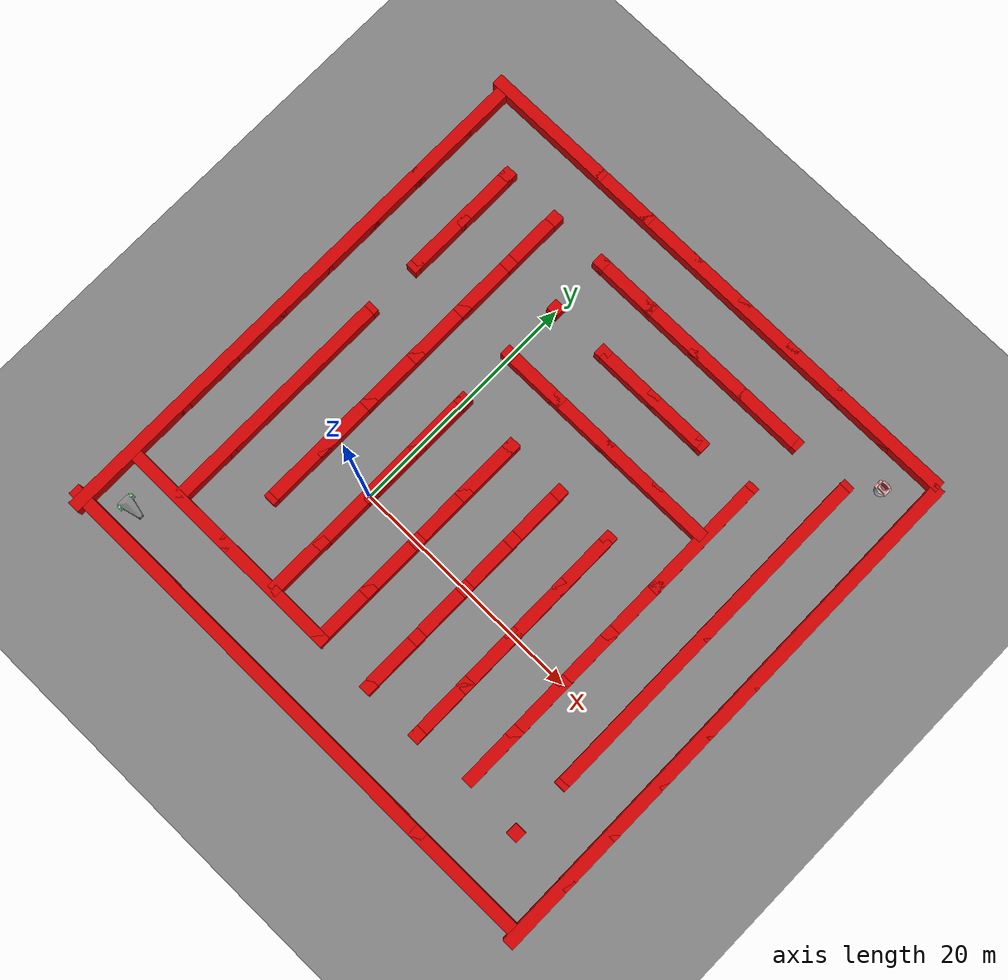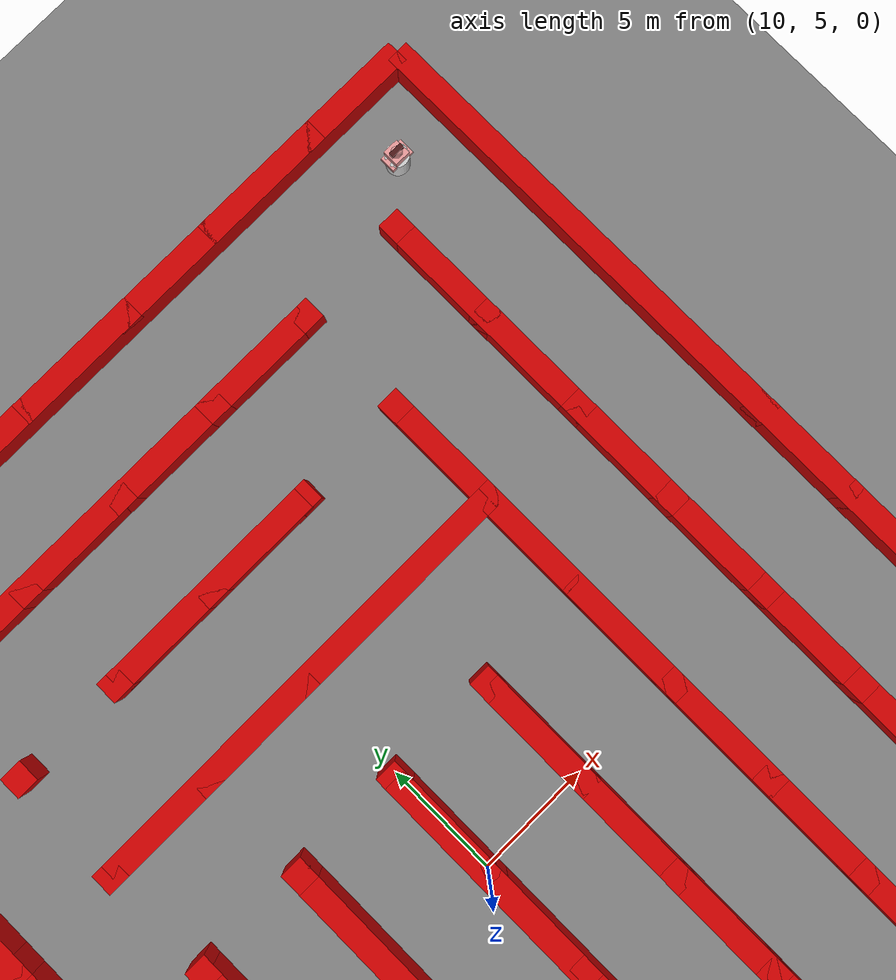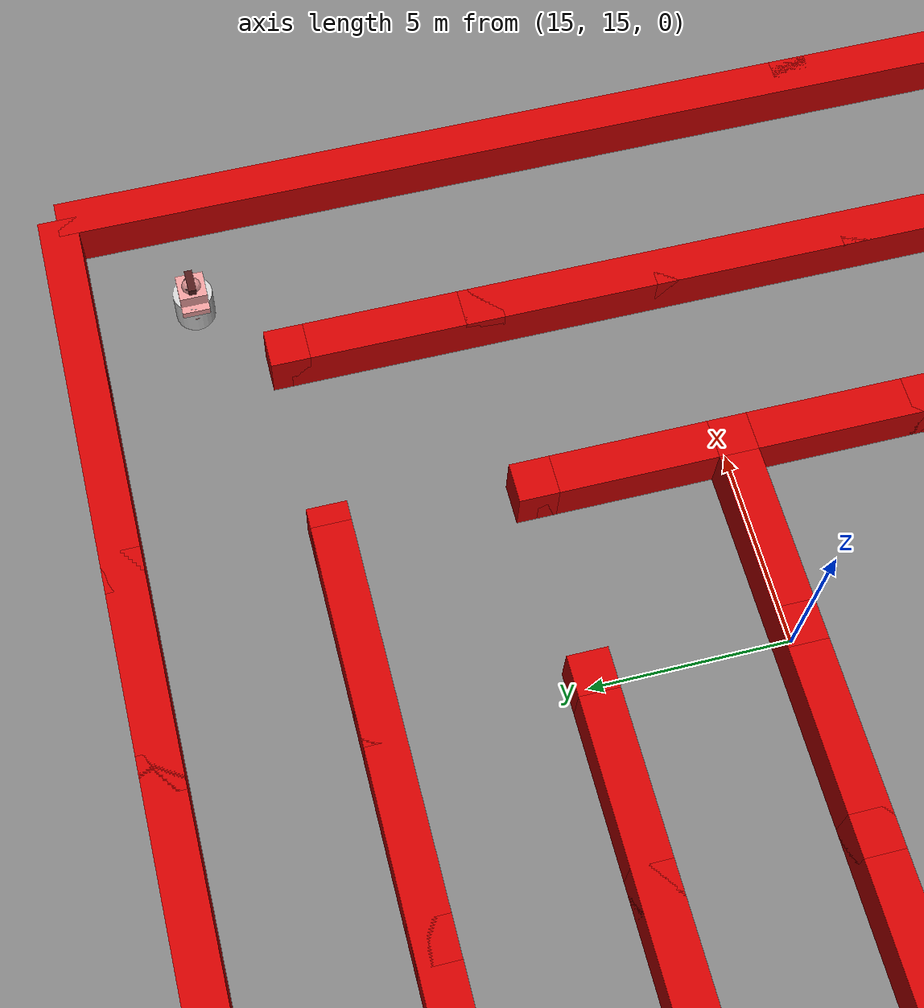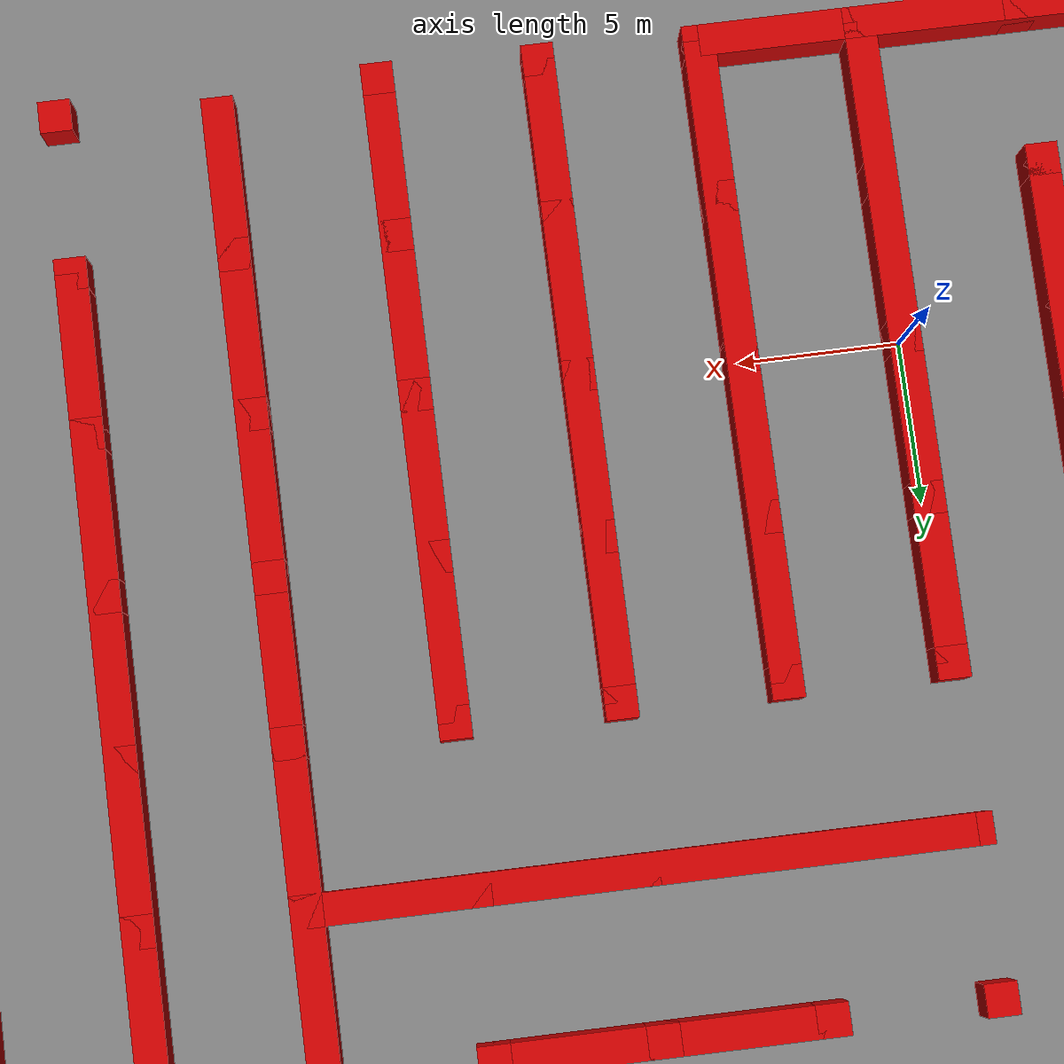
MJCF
<?xml version="1.0" ?>
<mujoco>
<asset>
    <texture name="grid" type="2d" builtin="checker" width="512" height="512" rgb1=".1 .2 .3" rgb2=".2 .3 .4"/>
    <material name="grid" texture="grid" texrepeat="1 1" texuniform="true" reflectance=".2"/>
    <mesh name="chasis" scale=".1 .06 .015"
      vertex=" 9   2   0
              -10  10  10
               9  -2   0
               10  3  -10
               10 -3  -10
              -8   10 -10
              -10 -10  10
              -8  -10 -10
              -5   0   20"/>
  </asset>

<default>
  <joint damping=".005" actuatorfrcrange="-1000 1000"/> <!-- Reduced damping, increased actuatorfrcrange -->
  <default class="wheel">
    <geom type="cylinder" size=".2 .05" rgba=".5 .5 1 1" friction="0.01"/> <!-- Adjusted wheel size and friction -->
  </default>
  <default class="decor">
    <site type="box" rgba=".5 1 .5 1"/>
  </default>
</default>

    <worldbody>
        <!-- Define the floor -->
        <body name="floor" pos="10 10 0">
            <geom name="floor_geom" type="plane" size="50 50 1" rgba="0.5 0.5 0.5 1"/>
        </body>
        <body name="obstacles">
            <!-- Define obstacles in a 10x10 grid pattern with 1x1 spacing -->
            <!-- Row 1 -->
            <geom name="obstacle_0_0" type="box" size="0.5 23 1" pos="-15 7 0.25" rgba="0.8 0 0 1"/>
            <geom name="obstacle_0_1" type="box" size="10 0.5 1" pos="-5 -10 0.25" rgba="0.8 0 0 1"/>
            <geom name="obstacle_0_2" type="box" size="0.5 0.5 1" pos="-15 -5 0.25" rgba="0.8 0 0 1"/>
            <geom name="obstacle_0_3" type="box" size="0.5 0.5 1" pos="-15 0 0.25" rgba="0.8 0 0 1"/>
            <geom name="obstacle_0_4" type="box" size="0.5 0.5 1" pos="-15 5 0.25" rgba="0.8 0 0 1"/>
            <geom name="obstacle_0_5" type="box" size="0.5 0.5 1" pos="-15 10 0.25" rgba="0.8 0 0 1"/>
            <geom name="obstacle_0_6" type="box" size="0.5 0.5 1" pos="-15 15 0.25" rgba="0.8 0 0 1"/>
            <geom name="obstacle_0_7" type="box" size="0.5 0.5 1" pos="-15 20 0.25" rgba="0.8 0 0 1"/>
            <geom name="obstacle_0_8" type="box" size="0.5 0.5 1" pos="-15 25 0.25" rgba="0.8 0 0 1"/>
            <geom name="obstacle_0_9" type="box" size="23 0.5 1" pos="7 30 0.25" rgba="0.8 0 0 1"/>

            <!-- Row 2 -->
            <geom name="obstacle_1_0" type="box" size="0.5 10 1" pos="-10 0 0.25" rgba="0.8 0 0 1"/>
            <geom name="obstacle_1_1" type="box" size="0.5 0.5 1" pos="-10 -10 0.25" rgba="0.8 0 0 1"/>
            <geom name="obstacle_1_2" type="box" size="0.5 0.5 1" pos="-10 -5 0.25" rgba="0.8 0 0 1"/>
            <geom name="obstacle_1_3" type="box" size="0.5 0.5 1" pos="-10 0 0.25" rgba="0.8 0 0 1"/>
            <geom name="obstacle_1_4" type="box" size="0.5 0.5 1" pos="-10 5 0.25" rgba="0.8 0 0 1"/>
            <geom name="obstacle_1_5" type="box" size="0.5 0.5 1" pos="-10 10 0.25" rgba="0.8 0 0 1"/>
            <geom name="obstacle_1_6" type="box" size="0.5 0.5 1" pos="-10 15 0.25" rgba="0.8 0 0 1"/>
            <geom name="obstacle_1_7" type="box" size="0.5 0.5 1" pos="-10 20 0.25" rgba="0.8 0 0 1"/>
            <geom name="obstacle_1_8" type="box" size="0.5 0.5 1" pos="-10 25 0.25" rgba="0.8 0 0 1"/>
            <geom name="obstacle_1_9" type="box" size="0.5 5 1" pos="-10 20 0.25" rgba="0.8 0 0 1"/>

            <!-- Row 3 -->
            <geom name="obstacle_2_0" type="box" size="0.5 15 1" pos="-5 10 0.25" rgba="0.8 0 0 1"/>
            <geom name="obstacle_2_1" type="box" size="0.5 0.5 1" pos="-5 -10 0.25" rgba="0.8 0 0 1"/>
            <geom name="obstacle_2_2" type="box" size="0.5 0.5 1" pos="-5 -5 0.25" rgba="0.8 0 0 1"/>
            <geom name="obstacle_2_3" type="box" size="0.5 0.5 1" pos="-5 0 0.25" rgba="0.8 0 0 1"/>
            <geom name="obstacle_2_4" type="box" size="0.5 0.5 1" pos="-5 5 0.25" rgba="0.8 0 0 1"/>
            <geom name="obstacle_2_5" type="box" size="0.5 0.5 1" pos="-5 10 0.25" rgba="0.8 0 0 1"/>
            <geom name="obstacle_2_6" type="box" size="0.5 0.5 1" pos="-5 15 0.25" rgba="0.8 0 0 1"/>
            <geom name="obstacle_2_7" type="box" size="0.5 0.5 1" pos="-5 20 0.25" rgba="0.8 0 0 1"/>
            <geom name="obstacle_2_8" type="box" size="0.5 0.5 1" pos="-5 25 0.25" rgba="0.8 0 0 1"/>
            <geom name="obstacle_2_9" type="box" size="0.5 0.5 1" pos="-5 30 0.25" rgba="0.8 0 0 1"/>

            <!-- Row 4 -->
            <geom name="obstacle_3_0" type="box" size="0.5 10 1" pos="0 0 0.25" rgba="0.8 0 0 1"/>
            <geom name="obstacle_3_1" type="box" size="0.5 0.5 1" pos="0 -10 0.25" rgba="0.8 0 0 1"/>
            <geom name="obstacle_3_2" type="box" size="0.5 0.5 1" pos="0 -5 0.25" rgba="0.8 0 0 1"/>
            <geom name="obstacle_3_3" type="box" size="0.5 0.5 1" pos="0 0 0.25" rgba="0.8 0 0 1"/>
            <geom name="obstacle_3_4" type="box" size="0.5 0.5 1" pos="0 5 0.25" rgba="0.8 0 0 1"/>
            <geom name="obstacle_3_5" type="box" size="0.5 0.5 1" pos="0 10 0.25" rgba="0.8 0 0 1"/>
            <geom name="obstacle_3_6" type="box" size="0.5 0.5 1" pos="0 15 0.25" rgba="0.8 0 0 1"/>
            <geom name="obstacle_3_7" type="box" size="0.5 0.5 1" pos="0 20 0.25" rgba="0.8 0 0 1"/>
            <geom name="obstacle_3_8" type="box" size="0.5 0.5 1" pos="0 25 0.25" rgba="0.8 0 0 1"/>
            <geom name="obstacle_3_9" type="box" size="0.5 0.5 1" pos="0 30 0.25" rgba="0.8 0 0 1"/>

            <!-- Row 5 -->
            <geom name="obstacle_4_0" type="box" size="0.5 10 1" pos="5 0 0.25" rgba="0.8 0 0 1"/>
            <geom name="obstacle_4_1" type="box" size="0.5 0.5 1" pos="5 -10 0.25" rgba="0.8 0 0 1"/>
            <geom name="obstacle_4_2" type="box" size="0.5 0.5 1" pos="5 -5 0.25" rgba="0.8 0 0 1"/>
            <geom name="obstacle_4_3" type="box" size="0.5 0.5 1" pos="5 0 0.25" rgba="0.8 0 0 1"/>
            <geom name="obstacle_4_4" type="box" size="0.5 0.5 1" pos="5 5 0.25" rgba="0.8 0 0 1"/>
            <geom name="obstacle_4_5" type="box" size="0.5 0.5 1" pos="5 10 0.25" rgba="0.8 0 0 1"/>
            <geom name="obstacle_4_6" type="box" size="0.5 0.5 1" pos="5 15 0.25" rgba="0.8 0 0 1"/>
            <geom name="obstacle_4_7" type="box" size="0.5 0.5 1" pos="5 20 0.25" rgba="0.8 0 0 1"/>
            <geom name="obstacle_4_8" type="box" size="0.5 0.5 1" pos="5 25 0.25" rgba="0.8 0 0 1"/>
            <geom name="obstacle_4_9" type="box" size="0.5 0.5 1" pos="5 30 0.25" rgba="0.8 0 0 1"/>

            <!-- Row 6 -->
            <geom name="obstacle_5_0" type="box" size="0.5 10 1" pos="10 0 0.25" rgba="0.8 0 0 1"/>
            <geom name="obstacle_5_1" type="box" size="0.5 0.5 1" pos="10 -10 0.25" rgba="0.8 0 0 1"/>
            <geom name="obstacle_5_2" type="box" size="0.5 0.5 1" pos="10 -5 0.25" rgba="0.8 0 0 1"/>
            <geom name="obstacle_5_3" type="box" size="0.5 0.5 1" pos="10 0 0.25" rgba="0.8 0 0 1"/>
            <geom name="obstacle_5_4" type="box" size="0.5 0.5 1" pos="10 5 0.25" rgba="0.8 0 0 1"/>
            <geom name="obstacle_5_5" type="box" size="0.5 0.5 1" pos="10 10 0.25" rgba="0.8 0 0 1"/>
            <geom name="obstacle_5_6" type="box" size="0.5 0.5 1" pos="10 15 0.25" rgba="0.8 0 0 1"/>
            <geom name="obstacle_5_7" type="box" size="0.5 0.5 1" pos="10 20 0.25" rgba="0.8 0 0 1"/>
            <geom name="obstacle_5_8" type="box" size="0.5 0.5 1" pos="10 25 0.25" rgba="0.8 0 0 1"/>
            <geom name="obstacle_5_9" type="box" size="0.5 0.5 1" pos="10 30 0.25" rgba="0.8 0 0 1"/>

            <!-- Row 7 -->
            <geom name="obstacle_6_0" type="box" size="0.5 10 1" pos="15 0 0.25" rgba="0.8 0 0 1"/>
            <geom name="obstacle_6_1" type="box" size="0.5 0.5 1" pos="15 -10 0.25" rgba="0.8 0 0 1"/>
            <geom name="obstacle_6_2" type="box" size="0.5 0.5 1" pos="15 -5 0.25" rgba="0.8 0 0 1"/>
            <geom name="obstacle_6_3" type="box" size="0.5 0.5 1" pos="15 0 0.25" rgba="0.8 0 0 1"/>
            <geom name="obstacle_6_4" type="box" size="0.5 0.5 1" pos="15 5 0.25" rgba="0.8 0 0 1"/>
            <geom name="obstacle_6_5" type="box" size="0.5 0.5 1" pos="15 10 0.25" rgba="0.8 0 0 1"/>
            <geom name="obstacle_6_6" type="box" size="0.5 0.5 1" pos="15 15 0.25" rgba="0.8 0 0 1"/>
            <geom name="obstacle_6_7" type="box" size="0.5 0.5 1" pos="15 20 0.25" rgba="0.8 0 0 1"/>
            <geom name="obstacle_6_8" type="box" size="0.5 0.5 1" pos="15 25 0.25" rgba="0.8 0 0 1"/>
            <geom name="obstacle_6_9" type="box" size="0.5 0.5 1" pos="15 30 0.25" rgba="0.8 0 0 1"/>

            <!-- Row 8 -->
            <geom name="obstacle_7_1" type="box" size="0.5 15 1" pos="20 5 0.25" rgba="0.8 0 0 1"/>
            <geom name="obstacle_7_0" type="box" size="0.5 0.5 1" pos="20 -15 0.25" rgba="0.8 0 0 1"/>
            <geom name="obstacle_7_2" type="box" size="0.5 0.5 1" pos="20 -5 0.25" rgba="0.8 0 0 1"/>
            <geom name="obstacle_7_3" type="box" size="0.5 0.5 1" pos="20 0 0.25" rgba="0.8 0 0 1"/>
            <geom name="obstacle_7_4" type="box" size="0.5 0.5 1" pos="20 5 0.25" rgba="0.8 0 0 1"/>
            <geom name="obstacle_7_5" type="box" size="0.5 0.5 1" pos="20 10 0.25" rgba="0.8 0 0 1"/>
            <geom name="obstacle_7_6" type="box" size="0.5 0.5 1" pos="20 15 0.25" rgba="0.8 0 0 1"/>
            <geom name="obstacle_7_7" type="box" size="0.5 0.5 1" pos="20 20 0.25" rgba="0.8 0 0 1"/>
            <geom name="obstacle_7_8" type="box" size="0.5 0.5 1" pos="20 25 0.25" rgba="0.8 0 0 1"/>
            <geom name="obstacle_7_9" type="box" size="0.5 0.5 1" pos="20 30 0.25" rgba="0.8 0 0 1"/>

            <!-- Row 9 -->
            <geom name="obstacle_8_0" type="box" size="0.5 15 1" pos="25 10 0.25" rgba="0.8 0 0 1"/>
            <geom name="obstacle_8_1" type="box" size="0.5 0.5 1" pos="25 -10 0.25" rgba="0.8 0 0 1"/>
            <geom name="obstacle_8_2" type="box" size="0.5 0.5 1" pos="25 -5 0.25" rgba="0.8 0 0 1"/>
            <geom name="obstacle_8_3" type="box" size="0.5 0.5 1" pos="25 0 0.25" rgba="0.8 0 0 1"/>
            <geom name="obstacle_8_4" type="box" size="0.5 0.5 1" pos="25 5 0.25" rgba="0.8 0 0 1"/>
            <geom name="obstacle_8_5" type="box" size="0.5 0.5 1" pos="25 10 0.25" rgba="0.8 0 0 1"/>
            <geom name="obstacle_8_6" type="box" size="0.5 0.5 1" pos="25 15 0.25" rgba="0.8 0 0 1"/>
            <geom name="obstacle_8_7" type="box" size="0.5 0.5 1" pos="25 20 0.25" rgba="0.8 0 0 1"/>
            <geom name="obstacle_8_8" type="box" size="0.5 0.5 1" pos="25 25 0.25" rgba="0.8 0 0 1"/>
            <geom name="obstacle_8_9" type="box" size="0.5 0.5 1" pos="25 30 0.25" rgba="0.8 0 0 1"/>

            <!-- Row 10 -->
            <geom name="obstacle_9_0" type="box" size="23 0.5 1" pos="7 -15 0.25" rgba="0.8 0 0 1"/>
            <geom name="obstacle_9_1" type="box" size="0.5 0.5 1" pos="30 -10 0.25" rgba="0.8 0 0 1"/>
            <geom name="obstacle_9_2" type="box" size="0.5 0.5 1" pos="30 -5 0.25" rgba="0.8 0 0 1"/>
            <geom name="obstacle_9_3" type="box" size="0.5 0.5 1" pos="30 0 0.25" rgba="0.8 0 0 1"/>
            <geom name="obstacle_9_4" type="box" size="0.5 0.5 1" pos="30 5 0.25" rgba="0.8 0 0 1"/>
            <geom name="obstacle_9_5" type="box" size="0.5 0.5 1" pos="30 10 0.25" rgba="0.8 0 0 1"/>
            <geom name="obstacle_9_6" type="box" size="10 0.5 1" pos="10 15 0.25" rgba="0.8 0 0 1"/>
            <geom name="obstacle_9_7" type="box" size="5 0.5 1" pos="10 20 0.25" rgba="0.8 0 0 1"/>
            <geom name="obstacle_9_8" type="box" size="10 0.5 1" pos="10 25 0.25" rgba="0.8 0 0 1"/>
            <geom name="obstacle_9_9" type="box" size="0.5 23 1" pos="30 7 0.25" rgba="0.8 0 0 1"/>
        </body>

<!-- Define the agent -->
<body name="car" pos="-12 -13 0.5">
      <freejoint/>
      <light name="top light" pos="0 0 2" mode="trackcom" diffuse=".4 .4 .4"/>
      <geom name="chasis" type="mesh" mesh="chasis"/>
      <geom name="front wheel" pos=".8 0 -.15" type="sphere" size=".15" condim="1" priority="1"/>
      <light name="front light" pos="1 0 .2" dir="2 0 -1" diffuse="1 1 1"/>
      <body name="left wheel" pos="-.7 .6 0" zaxis="0 1 0">
        <joint name="left"/>
        <geom class="wheel"/>
        <site class="decor" size=".06 .25 .12"/>
        <site class="decor" size=".25 .06 .12"/>
      </body>
      <body name="right wheel" pos="-.7 -.6 0" zaxis="0 1 0">
        <joint name="right"/>
        <geom class="wheel"/>
        <site class="decor" size=".06 .25 .12"/>
        <site class="decor" size=".25 .06 .12"/>
      </body>
    </body>

<!-- Define the destination -->
<body name="destination" pos="27 27 0.5">
    <!-- Base of the robot -->
    <geom name="destination_base" type="cylinder" size="0.5 0.5" pos="0 0 0.3" rgba="0.8 0.8 0.8 1"/>

    <!-- Body of the robot -->
    <geom name="destination_body" type="box" size="0.35 0.35 0.5" pos="0 0 0.65" rgba="0.9 0.6 0.6 1"/>

    <!-- Head of the robot -->
    <geom name="destination_head" type="sphere" size="0.25" pos="0 0 1.1" rgba="0.9 0.6 0.6 1"/>

    <!-- Eyes of the robot -->
    <geom name="destination_left_eye" type="sphere" size="0.05" pos="-0.1 0.1 1.2" rgba="0.1 0.1 0.1 1"/>
    <geom name="destination_right_eye" type="sphere" size="0.05" pos="0.1 0.1 1.2" rgba="0.1 0.1 0.1 1"/>

    <!-- Eyebrows -->
    <geom name="destination_left_eyebrow" type="box" size="0.07 0.02 0.01" pos="-0.1 0.13 1.25" rgba="0.2 0.1 0.1 1"/>
    <geom name="destination_right_eyebrow" type="box" size="0.07 0.02 0.01" pos="0.1 0.13 1.25" rgba="0.2 0.1 0.1 1"/>

    <!-- Mouth -->
    <geom name="destination_mouth" type="box" size="0.1 0.02 0.01" pos="0 0.1 1.05" rgba="0.2 0.1 0.1 1"/>

    <!-- Hair (simple box as a placeholder for hair) -->
    <geom name="destination_hair" type="box" size="0.3 0.1 0.1" pos="0 0 1.3" rgba="0.3 0.1 0.1 1"/>

    <!-- Left arm -->
    <geom name="destination_left_arm" type="box" size="0.1 0.35 0.1" pos="-0.45 0 0.7" rgba="0.9 0.6 0.6 1"/>

    <!-- Right arm -->
    <geom name="destination_right_arm" type="box" size="0.1 0.35 0.1" pos="0.45 0 0.7" rgba="0.9 0.6 0.6 1"/>

    <!-- Left hand -->
    <geom name="destination_left_hand" type="box" size="0.05 0.05 0.02" pos="-0.45 0 0.35" rgba="0.9 0.6 0.6 1"/>

    <!-- Right hand -->
    <geom name="destination_right_hand" type="box" size="0.05 0.05 0.02" pos="0.45 0 0.35" rgba="0.9 0.6 0.6 1"/>

    <!-- Left leg -->
    <geom name="destination_left_leg" type="box" size="0.1 0.1 0.4" pos="-0.2 0 -0.4" rgba="0.9 0.6 0.6 1"/>

    <!-- Right leg -->
    <geom name="destination_right_leg" type="box" size="0.1 0.1 0.4" pos="0.2 0 -0.4" rgba="0.9 0.6 0.6 1"/>

    <!-- Left foot -->
    <geom name="destination_left_foot" type="box" size="0.1 0.05 0.02" pos="-0.2 0 -0.55" rgba="0.9 0.6 0.6 1"/>

    <!-- Right foot -->
    <geom name="destination_right_foot" type="box" size="0.1 0.05 0.02" pos="0.2 0 -0.55" rgba="0.9 0.6 0.6 1"/>

    <!-- Additional features -->
    <!-- Nose -->
    <geom name="destination_nose" type="sphere" size="0.05" pos="0 0.1 1.1" rgba="0.9 0.6 0.6 1"/>

    <!-- Decorative elements -->
    <geom name="destination_decoration" type="box" size="0.05 0.05 0.02" pos="0 0.15 1.2" rgba="1 0.5 0.5 1"/>
</body>
    </worldbody>

<tendon>
    <fixed name="forward">
        <joint joint="left" coef="200.0"/>  <!-- Increased coefficient -->
        <joint joint="right" coef="200.0"/> <!-- Increased coefficient -->
    </fixed>
    <fixed name="turn">
        <joint joint="left" coef="-2.0"/> <!-- Increased coefficient -->
        <joint joint="right" coef="2.0"/>  <!-- Increased coefficient -->
    </fixed>
</tendon>

<actuator>
    <motor name="forward" tendon="forward" ctrlrange="-10 10"/> <!-- Increased from -2 2 to -10 10 -->
    <motor name="turn" tendon="turn" ctrlrange="-10 10"/> <!-- Increased from -2 2 to -10 10 -->
</actuator>

  <sensor>
    <jointactuatorfrc name="right" joint="right"/>
    <jointactuatorfrc name="left" joint="left"/>
  </sensor>

</mujoco>
